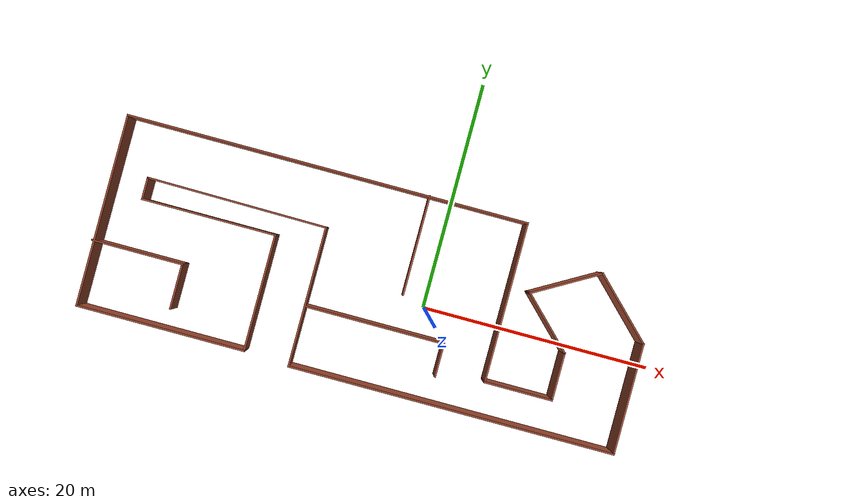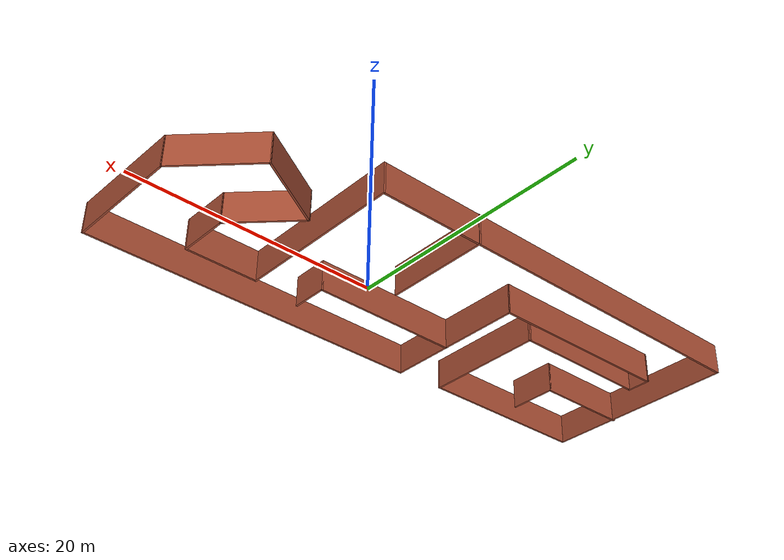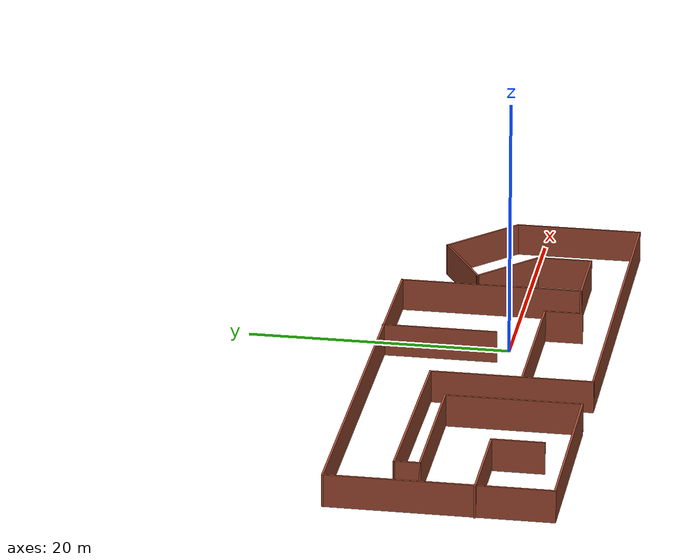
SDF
<?xml version='1.0'?>
<sdf version='1.6'>
  <model name='closehome'>
    <pose frame=''>-4.95476 0.860364 0 0 -0 0</pose>
    <link name='Wall_1'>
      <collision name='Wall_1_Collision'>
        <geometry>
          <box>
            <size>12.25 0.15 2.5</size>
          </box>
        </geometry>
        <pose frame=''>0 0 1.25 0 -0 0</pose>
      </collision>
      <visual name='Wall_1_Visual'>
        <pose frame=''>0 0 1.25 0 -0 0</pose>
        <geometry>
          <box>
            <size>12.25 0.15 2.5</size>
          </box>
        </geometry>
        <material>
          <script>
            <uri>file://media/materials/scripts/gazebo.material</uri>
            <name>Gazebo/Bricks</name>
          </script>
          <ambient>1 1 1 1</ambient>
        </material>
        <meta>
          <layer>0</layer>
        </meta>
      </visual>
      <pose frame=''>-4.82997 -2.41293 0 0 -0 -1.5708</pose>
    </link>
    <link name='Wall_10'>
      <collision name='Wall_10_Collision'>
        <geometry>
          <box>
            <size>35 0.15 2.5</size>
          </box>
        </geometry>
        <pose frame=''>0 0 1.25 0 -0 0</pose>
      </collision>
      <visual name='Wall_10_Visual'>
        <pose frame=''>0 0 1.25 0 -0 0</pose>
        <geometry>
          <box>
            <size>35 0.15 2.5</size>
          </box>
        </geometry>
        <material>
          <script>
            <uri>file://media/materials/scripts/gazebo.material</uri>
            <name>Gazebo/Bricks</name>
          </script>
          <ambient>1 1 1 1</ambient>
        </material>
        <meta>
          <layer>0</layer>
        </meta>
      </visual>
      <pose frame=''>-5.96134 8.41918 0 0 -0 3.14159</pose>
    </link>
    <link name='Wall_11'>
      <collision name='Wall_11_Collision'>
        <geometry>
          <box>
            <size>16.75 0.15 2.5</size>
          </box>
        </geometry>
        <pose frame=''>0 0 1.25 0 -0 0</pose>
      </collision>
      <visual name='Wall_11_Visual'>
        <pose frame=''>0 0 1.25 0 -0 0</pose>
        <geometry>
          <box>
            <size>16.75 0.15 2.5</size>
          </box>
        </geometry>
        <material>
          <script>
            <uri>file://media/materials/scripts/gazebo.material</uri>
            <name>Gazebo/Bricks</name>
          </script>
          <ambient>1 1 1 1</ambient>
        </material>
        <meta>
          <layer>0</layer>
        </meta>
      </visual>
      <pose frame=''>-23.3863 0.119179 0 0 -0 -1.5708</pose>
    </link>
    <link name='Wall_12'>
      <collision name='Wall_12_Collision'>
        <geometry>
          <box>
            <size>14.75 0.15 2.5</size>
          </box>
        </geometry>
        <pose frame=''>0 0 1.25 0 -0 0</pose>
      </collision>
      <visual name='Wall_12_Visual'>
        <pose frame=''>0 0 1.25 0 -0 0</pose>
        <geometry>
          <box>
            <size>14.75 0.15 2.5</size>
          </box>
        </geometry>
        <material>
          <script>
            <uri>file://media/materials/scripts/gazebo.material</uri>
            <name>Gazebo/Bricks</name>
          </script>
          <ambient>1 1 1 1</ambient>
        </material>
        <meta>
          <layer>0</layer>
        </meta>
      </visual>
      <pose frame=''>-16.0863 -8.18082 0 0 -0 0</pose>
    </link>
    <link name='Wall_13'>
      <collision name='Wall_13_Collision'>
        <geometry>
          <box>
            <size>10.25 0.15 2.5</size>
          </box>
        </geometry>
        <pose frame=''>0 0 1.25 0 -0 0</pose>
      </collision>
      <visual name='Wall_13_Visual'>
        <pose frame=''>0 0 1.25 0 -0 0</pose>
        <geometry>
          <box>
            <size>10.25 0.15 2.5</size>
          </box>
        </geometry>
        <material>
          <script>
            <uri>file://media/materials/scripts/gazebo.material</uri>
            <name>Gazebo/Bricks</name>
          </script>
          <ambient>1 1 1 1</ambient>
        </material>
        <meta>
          <layer>0</layer>
        </meta>
      </visual>
      <pose frame=''>-8.78634 -3.13082 0 0 -0 1.5708</pose>
    </link>
    <link name='Wall_14'>
      <collision name='Wall_14_Collision'>
        <geometry>
          <box>
            <size>11.75 0.15 2.5</size>
          </box>
        </geometry>
        <pose frame=''>0 0 1.25 0 -0 0</pose>
      </collision>
      <visual name='Wall_14_Visual'>
        <pose frame=''>0 0 1.25 0 -0 0</pose>
        <geometry>
          <box>
            <size>11.75 0.15 2.5</size>
          </box>
        </geometry>
        <material>
          <script>
            <uri>file://media/materials/scripts/gazebo.material</uri>
            <name>Gazebo/Bricks</name>
          </script>
          <ambient>1 1 1 1</ambient>
        </material>
        <meta>
          <layer>0</layer>
        </meta>
      </visual>
      <pose frame=''>-14.5863 1.91918 0 0 -0 3.14159</pose>
    </link>
    <link name='Wall_15'>
      <collision name='Wall_15_Collision'>
        <geometry>
          <box>
            <size>2 0.15 2.5</size>
          </box>
        </geometry>
        <pose frame=''>0 0 1.25 0 -0 0</pose>
      </collision>
      <visual name='Wall_15_Visual'>
        <pose frame=''>0 0 1.25 0 -0 0</pose>
        <geometry>
          <box>
            <size>2 0.15 2.5</size>
          </box>
        </geometry>
        <material>
          <script>
            <uri>file://media/materials/scripts/gazebo.material</uri>
            <name>Gazebo/Bricks</name>
          </script>
          <ambient>1 1 1 1</ambient>
        </material>
        <meta>
          <layer>0</layer>
        </meta>
      </visual>
      <pose frame=''>-20.3863 2.84418 0 0 -0 1.5708</pose>
    </link>
    <link name='Wall_16'>
      <collision name='Wall_16_Collision'>
        <geometry>
          <box>
            <size>15.7069 0.15 2.5</size>
          </box>
        </geometry>
        <pose frame=''>0 0 1.25 0 -0 0</pose>
      </collision>
      <visual name='Wall_16_Visual'>
        <pose frame=''>0 0 1.25 0 -0 0</pose>
        <geometry>
          <box>
            <size>15.7069 0.15 2.5</size>
          </box>
        </geometry>
        <material>
          <script>
            <uri>file://media/materials/scripts/gazebo.material</uri>
            <name>Gazebo/Bricks</name>
          </script>
          <ambient>1 1 1 1</ambient>
        </material>
        <meta>
          <layer>0</layer>
        </meta>
      </visual>
      <pose frame=''>-12.6082 3.70313 0 0 -0 -0.008492</pose>
    </link>
    <link name='Wall_18'>
      <collision name='Wall_18_Collision'>
        <geometry>
          <box>
            <size>8.75 0.15 2.5</size>
          </box>
        </geometry>
        <pose frame=''>0 0 1.25 0 -0 0</pose>
      </collision>
      <visual name='Wall_18_Visual'>
        <pose frame=''>0 0 1.25 0 -0 0</pose>
        <geometry>
          <box>
            <size>8.75 0.15 2.5</size>
          </box>
        </geometry>
        <material>
          <script>
            <uri>file://media/materials/scripts/gazebo.material</uri>
            <name>Gazebo/Bricks</name>
          </script>
          <ambient>1 1 1 1</ambient>
        </material>
        <meta>
          <layer>0</layer>
        </meta>
      </visual>
      <pose frame=''>2.91204 4.16293 0 0 -0 -1.5708</pose>
    </link>
    <link name='Wall_2'>
      <collision name='Wall_2_Collision'>
        <geometry>
          <box>
            <size>28.5 0.15 2.5</size>
          </box>
        </geometry>
        <pose frame=''>0 0 1.25 0 -0 0</pose>
      </collision>
      <visual name='Wall_2_Visual'>
        <pose frame=''>0 0 1.25 0 -0 0</pose>
        <geometry>
          <box>
            <size>28.5 0.15 2.5</size>
          </box>
        </geometry>
        <material>
          <script>
            <uri>file://media/materials/scripts/gazebo.material</uri>
            <name>Gazebo/Bricks</name>
          </script>
          <ambient>1 1 1 1</ambient>
        </material>
        <meta>
          <layer>0</layer>
        </meta>
      </visual>
      <pose frame=''>9.34503 -8.46293 0 0 -0 0</pose>
    </link>
    <link name='Wall_20'>
      <collision name='Wall_20_Collision'>
        <geometry>
          <box>
            <size>12.25 0.15 2.5</size>
          </box>
        </geometry>
        <pose frame=''>0 0 1.25 0 -0 0</pose>
      </collision>
      <visual name='Wall_20_Visual'>
        <pose frame=''>0 0 1.25 0 -0 0</pose>
        <geometry>
          <box>
            <size>12.25 0.15 2.5</size>
          </box>
        </geometry>
        <material>
          <script>
            <uri>file://media/materials/scripts/gazebo.material</uri>
            <name>Gazebo/Bricks</name>
          </script>
          <ambient>1 1 1 1</ambient>
        </material>
        <meta>
          <layer>0</layer>
        </meta>
      </visual>
      <pose frame=''>1.24952 -3.21199 0 0 -0 0</pose>
    </link>
    <link name='Wall_22'>
      <collision name='Wall_22_Collision'>
        <geometry>
          <box>
            <size>3 0.15 2.5</size>
          </box>
        </geometry>
        <pose frame=''>0 0 1.25 0 -0 0</pose>
      </collision>
      <visual name='Wall_22_Visual'>
        <pose frame=''>0 0 1.25 0 -0 0</pose>
        <geometry>
          <box>
            <size>3 0.15 2.5</size>
          </box>
        </geometry>
        <material>
          <script>
            <uri>file://media/materials/scripts/gazebo.material</uri>
            <name>Gazebo/Bricks</name>
          </script>
          <ambient>1 1 1 1</ambient>
        </material>
        <meta>
          <layer>0</layer>
        </meta>
      </visual>
      <pose frame=''>7.29953 -4.63699 0 0 -0 -1.5708</pose>
    </link>
    <link name='Wall_24'>
      <collision name='Wall_24_Collision'>
        <geometry>
          <box>
            <size>8 0.15 2.5</size>
          </box>
        </geometry>
        <pose frame=''>0 0 1.25 0 -0 0</pose>
      </collision>
      <visual name='Wall_24_Visual'>
        <pose frame=''>0 0 1.25 0 -0 0</pose>
        <geometry>
          <box>
            <size>8 0.15 2.5</size>
          </box>
        </geometry>
        <material>
          <script>
            <uri>file://media/materials/scripts/gazebo.material</uri>
            <name>Gazebo/Bricks</name>
          </script>
          <ambient>1 1 1 1</ambient>
        </material>
        <meta>
          <layer>0</layer>
        </meta>
      </visual>
      <pose frame=''>-19.6261 -2.50441 0 0 -0 0</pose>
    </link>
    <link name='Wall_25'>
      <collision name='Wall_25_Collision'>
        <geometry>
          <box>
            <size>4 0.15 2.5</size>
          </box>
        </geometry>
        <pose frame=''>0 0 1.25 0 -0 0</pose>
      </collision>
      <visual name='Wall_25_Visual'>
        <pose frame=''>0 0 1.25 0 -0 0</pose>
        <geometry>
          <box>
            <size>4 0.15 2.5</size>
          </box>
        </geometry>
        <material>
          <script>
            <uri>file://media/materials/scripts/gazebo.material</uri>
            <name>Gazebo/Bricks</name>
          </script>
          <ambient>1 1 1 1</ambient>
        </material>
        <meta>
          <layer>0</layer>
        </meta>
      </visual>
      <pose frame=''>-15.7011 -4.42941 0 0 -0 -1.5708</pose>
    </link>
    <link name='Wall_3'>
      <collision name='Wall_3_Collision'>
        <geometry>
          <box>
            <size>9.75 0.15 2.5</size>
          </box>
        </geometry>
        <pose frame=''>0 0 1.25 0 -0 0</pose>
      </collision>
      <visual name='Wall_3_Visual'>
        <pose frame=''>0 0 1.25 0 -0 0</pose>
        <geometry>
          <box>
            <size>9.75 0.15 2.5</size>
          </box>
        </geometry>
        <material>
          <script>
            <uri>file://media/materials/scripts/gazebo.material</uri>
            <name>Gazebo/Bricks</name>
          </script>
          <ambient>1 1 1 1</ambient>
        </material>
        <meta>
          <layer>0</layer>
        </meta>
      </visual>
      <pose frame=''>23.52 -3.66293 0 0 -0 1.5708</pose>
    </link>
    <link name='Wall_4'>
      <collision name='Wall_4_Collision'>
        <geometry>
          <box>
            <size>7 0.15 2.5</size>
          </box>
        </geometry>
        <pose frame=''>0 0 1.25 0 -0 0</pose>
      </collision>
      <visual name='Wall_4_Visual'>
        <pose frame=''>0 0 1.25 0 -0 0</pose>
        <geometry>
          <box>
            <size>7 0.15 2.5</size>
          </box>
        </geometry>
        <material>
          <script>
            <uri>file://media/materials/scripts/gazebo.material</uri>
            <name>Gazebo/Bricks</name>
          </script>
          <ambient>1 1 1 1</ambient>
        </material>
        <meta>
          <layer>0</layer>
        </meta>
      </visual>
      <pose frame=''>21.0982 3.55891 0 0 -0 2.35619</pose>
    </link>
    <link name='Wall_5'>
      <collision name='Wall_5_Collision'>
        <geometry>
          <box>
            <size>6.5 0.15 2.5</size>
          </box>
        </geometry>
        <pose frame=''>0 0 1.25 0 -0 0</pose>
      </collision>
      <visual name='Wall_5_Visual'>
        <pose frame=''>0 0 1.25 0 -0 0</pose>
        <geometry>
          <box>
            <size>6.5 0.15 2.5</size>
          </box>
        </geometry>
        <material>
          <script>
            <uri>file://media/materials/scripts/gazebo.material</uri>
            <name>Gazebo/Bricks</name>
          </script>
          <ambient>1 1 1 1</ambient>
        </material>
        <meta>
          <layer>0</layer>
        </meta>
      </visual>
      <pose frame=''>15.9267 4.39325 0 0 -0 -2.61799</pose>
    </link>
    <link name='Wall_6'>
      <collision name='Wall_6_Collision'>
        <geometry>
          <box>
            <size>6 0.15 2.5</size>
          </box>
        </geometry>
        <pose frame=''>0 0 1.25 0 -0 0</pose>
      </collision>
      <visual name='Wall_6_Visual'>
        <pose frame=''>0 0 1.25 0 -0 0</pose>
        <geometry>
          <box>
            <size>6 0.15 2.5</size>
          </box>
        </geometry>
        <material>
          <script>
            <uri>file://media/materials/scripts/gazebo.material</uri>
            <name>Gazebo/Bricks</name>
          </script>
          <ambient>1 1 1 1</ambient>
        </material>
        <meta>
          <layer>0</layer>
        </meta>
      </visual>
      <pose frame=''>15.2454 0.737466 0 0 -0 -0.785398</pose>
    </link>
    <link name='Wall_7'>
      <collision name='Wall_7_Collision'>
        <geometry>
          <box>
            <size>4.25 0.15 2.5</size>
          </box>
        </geometry>
        <pose frame=''>0 0 1.25 0 -0 0</pose>
      </collision>
      <visual name='Wall_7_Visual'>
        <pose frame=''>0 0 1.25 0 -0 0</pose>
        <geometry>
          <box>
            <size>4.25 0.15 2.5</size>
          </box>
        </geometry>
        <material>
          <script>
            <uri>file://media/materials/scripts/gazebo.material</uri>
            <name>Gazebo/Bricks</name>
          </script>
          <ambient>1 1 1 1</ambient>
        </material>
        <meta>
          <layer>0</layer>
        </meta>
      </visual>
      <pose frame=''>17.3137 -3.38082 0 0 -0 -1.5708</pose>
    </link>
    <link name='Wall_8'>
      <collision name='Wall_8_Collision'>
        <geometry>
          <box>
            <size>6 0.15 2.5</size>
          </box>
        </geometry>
        <pose frame=''>0 0 1.25 0 -0 0</pose>
      </collision>
      <visual name='Wall_8_Visual'>
        <pose frame=''>0 0 1.25 0 -0 0</pose>
        <geometry>
          <box>
            <size>6 0.15 2.5</size>
          </box>
        </geometry>
        <material>
          <script>
            <uri>file://media/materials/scripts/gazebo.material</uri>
            <name>Gazebo/Bricks</name>
          </script>
          <ambient>1 1 1 1</ambient>
        </material>
        <meta>
          <layer>0</layer>
        </meta>
      </visual>
      <pose frame=''>14.3887 -5.43082 0 0 -0 3.14159</pose>
    </link>
    <link name='Wall_9'>
      <collision name='Wall_9_Collision'>
        <geometry>
          <box>
            <size>14 0.15 2.5</size>
          </box>
        </geometry>
        <pose frame=''>0 0 1.25 0 -0 0</pose>
      </collision>
      <visual name='Wall_9_Visual'>
        <pose frame=''>0 0 1.25 0 -0 0</pose>
        <geometry>
          <box>
            <size>14 0.15 2.5</size>
          </box>
        </geometry>
        <material>
          <script>
            <uri>file://media/materials/scripts/gazebo.material</uri>
            <name>Gazebo/Bricks</name>
          </script>
          <ambient>1 1 1 1</ambient>
        </material>
        <meta>
          <layer>0</layer>
        </meta>
      </visual>
      <pose frame=''>11.4637 1.49418 0 0 -0 1.5708</pose>
    </link>
    <static>1</static>
  </model>
</sdf>
